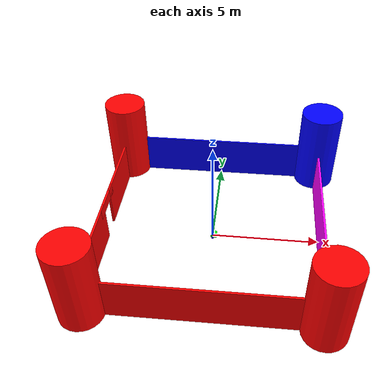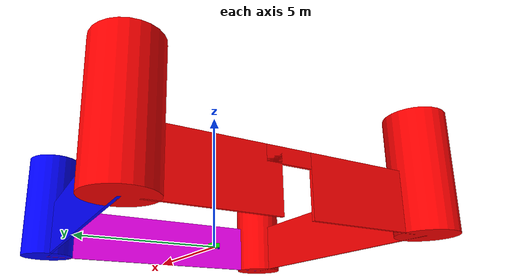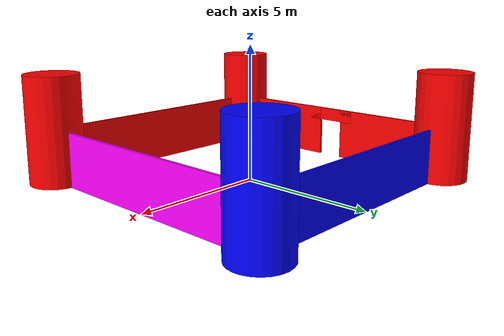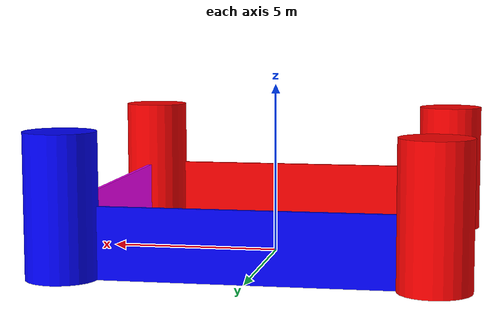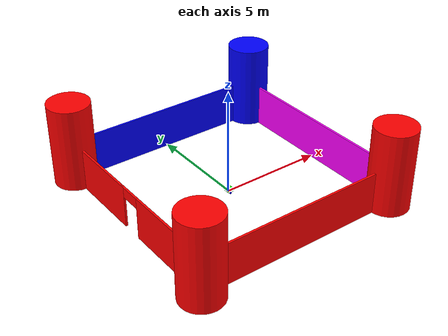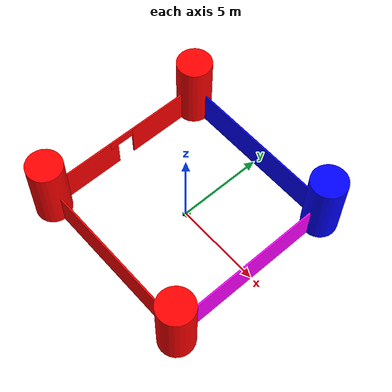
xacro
<?xml version="1.0"?>
<robot xmlns:xacro="http://www.ros.org/wiki/xacro"  name="robot">
    <xacro:property name="chassis_offset" value="-0.1" />
    <xacro:property name="chassis_width" value="0.3" />
    <xacro:property name="chassis_height" value="0.15" />
    <xacro:property name="chassis_length" value="0.3" />

    <xacro:property name="wheel_offset" value="0.175" />
    <xacro:property name="wheel_radius" value="0.05" />
    <xacro:property name="wheel_thickness" value="0.04" />

    <xacro:property name="caster_offset" value="0.24" />
    <xacro:property name="caster_radius" value="0.05" />

    <xacro:property name="lidar_radius" value="0.05" />
    <xacro:property name="lidar_height" value="0.04" />

    <xacro:property name="wall_length" value="10" />
    <xacro:property name="wall_thickness" value="0.1" />
    <xacro:property name="wall_height" value="2" />

    <xacro:property name="tower_height" value="4" />
    <xacro:property name="tower_radius" value="1" />

    <xacro:property name="door_width" value="1" />
    <xacro:property name="door_height" value="1.5" />
    <xacro:property name="door_thickness" value="0.1" />

    <xacro:include filename="colours.xacro" />
    <xacro:include filename="inertial.xacro" />
    <xacro:include filename="gazebo.xacro" />
    <xacro:include filename="robot_core.xacro" />

</robot>

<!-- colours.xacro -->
<robot xmlns:xacro="http://www.ros.org/wiki/xacro">
    <material name="black">
        <color rgba="0 0 0 1"/>
    </material>

    <material name="white">
        <color rgba="1 1 1 1"/>
    </material>

    <material name="red">
        <color rgba="1 0 0 1"/>
    </material>

    <material name="green">
        <color rgba="0 1 0 1"/>
    </material>

    <material name="blue">
        <color rgba="0 0 1 1"/>
    </material>

    <material name="yellow">
        <color rgba="1 1 0 1"/>
    </material>

    <material name="magenta">
        <color rgba="1 0 1 1"/>
    </material>

    <material name="cyan">
        <color rgba="0 1 1 1"/>
    </material>
</robot>

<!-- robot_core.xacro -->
<robot xmlns:xacro="http://www.ros.org/wiki/xacro">

    <link name="base_link">
    </link>

    <joint name="north_wall_joint" type="fixed">
        <parent link="base_link"/>
        <child link="north_wall"/>
        <origin xyz="0 ${wall_length/2} ${wall_height/2}"/>
    </joint>

    <link name="north_wall">
        <visual>
            <origin xyz="0 0 0" rpy="0 0 0"/>
            <geometry>
                <box size="${wall_length} ${wall_thickness} ${wall_height}"/>
            </geometry>
            <material name="blue"/>
        </visual>
        <collision>
            <origin xyz="0 0 0" rpy="0 0 0"/>
            <geometry>
                <box size="${wall_length} ${wall_thickness} ${wall_height}"/>
            </geometry>
        </collision>
        <xacro:inertial_box mass="0.5" x="${wall_length}" y="${wall_thickness}" z="${wall_height}">
            <origin xyz="0 0 0" rpy="0 0 0"/>
        </xacro:inertial_box>
    </link>

    <joint name="south_wall_joint" type="fixed">
        <parent link="base_link"/>
        <child link="south_wall"/>
        <origin xyz="0 -${wall_length/2} ${wall_height/2}"/>
    </joint>
    <link name="south_wall">
        <visual>
            <origin xyz="0 0 0" rpy="0 0 0"/>
            <geometry>
                <box size="${wall_length} ${wall_thickness} ${wall_height}"/>
            </geometry>
            <material name="red"/>
        </visual>
        <collision>
            <origin xyz="0 0 0" rpy="0 0 0"/>
            <geometry>
                <box size="${wall_length} ${wall_thickness} ${wall_height}"/>
            </geometry>
        </collision>
        <xacro:inertial_box mass="0.5" x="${wall_length}" y="${wall_thickness}" z="${wall_height}">
            <origin xyz="0 0 0" rpy="0 0 0"/>
        </xacro:inertial_box>
    </link>

    <joint name="east_wall_joint" type="fixed">
        <parent link="base_link"/>
        <child link="east_wall"/>
        <origin xyz="${wall_length/2} 0 ${wall_height/2}"/>
    </joint>
    <link name="east_wall">
        <visual>
            <origin xyz="0 0 0" rpy="0 0 ${pi/2}"/>
            <geometry>
                <box size="${wall_length} ${wall_thickness} ${wall_height}"/>
            </geometry>
            <material name="magenta"/>
        </visual>
        <collision>
            <origin xyz="0 0 0" rpy="0 0 ${pi/2}"/>
            <geometry>
                <box size="${wall_length} ${wall_thickness} ${wall_height}"/>
            </geometry>
        </collision>
        <xacro:inertial_box mass="0.5" x="${wall_length}" y="${wall_thickness}" z="${wall_height}">
            <origin xyz="0 0 0" rpy="0 0 ${pi/2}"/>
        </xacro:inertial_box>
    </link>

    <joint name="west_wall_joint_n" type="fixed">
        <parent link="base_link"/>
        <child link="west_wall_n"/>
        <origin xyz="-${wall_length/2} ${wall_length/4} ${wall_height/2}" rpy="0 0 ${pi/2}"/>
    </joint>
    <link name="west_wall_n">
        <visual>
            <origin xyz="0 0 0"/>
            <geometry>
                <box size="${wall_length/2-door_width} ${wall_thickness} ${wall_height}"/>
            </geometry>
            <material name="red"/>
        </visual>
        <collision>
            <origin xyz="0 0 0"/>
            <geometry>
                <box size="${wall_length/2-door_width} ${wall_thickness} ${wall_height}"/>
            </geometry>
         </collision>
        <xacro:inertial_box mass="0.5" x="${wall_length/2}" y="${wall_thickness}" z="${wall_height}">
            <origin xyz="0 0 0"/>
        </xacro:inertial_box>
    </link>

    <joint name="west_wall_joint_s" type="fixed">
        <parent link="base_link"/>
        <child link="west_wall_s"/>
        <origin xyz="-${wall_length/2} -${wall_length/4} ${wall_height/2}" rpy="0 0 ${pi/2}"/>
    </joint>
    <link name="west_wall_s">
        <visual>
            <origin xyz="0 0 0"/>
            <geometry>
                <box size="${wall_length/2-door_width} ${wall_thickness} ${wall_height}"/>
            </geometry>
            <material name="red"/>
        </visual>
        <collision>
            <origin xyz="0 0 0"/>
            <geometry>
                <box size="${wall_length/2-door_width} ${wall_thickness} ${wall_height}"/>
            </geometry>
        </collision>
        <xacro:inertial_box mass="0.5" x="${wall_length/2}" y="${wall_thickness}" z="${wall_height}">
            <origin xyz="0 0 0"/>
        </xacro:inertial_box>
    </link>

    <joint name="west_wall_joint_u" type="fixed">
        <parent link="base_link"/>
        <child link="west_wall_u"/>
        <origin xyz="-${wall_length/2} 0 ${door_height + (wall_height-door_height)/2}" rpy="0 0 ${pi/2}"/>
    </joint>
    <link name="west_wall_u">
        <visual>
            <origin xyz="0 0 0"/>
            <geometry>
                <box size="${door_width*2} ${wall_thickness} ${wall_height-door_height}"/>
            </geometry>
            <material name="red"/>
        </visual>
        <collision>
            <origin xyz="0 0 0"/>
            <geometry>
                <box size="${door_width*2} ${wall_thickness} ${wall_height-door_height}"/>
            </geometry>
        </collision>
        <xacro:inertial_box mass="0.5" x="${door_width*2}" y="${wall_thickness}" z="${wall_height-door_height}">
            <origin xyz="0 0 0"/>
        </xacro:inertial_box>
    </link>

    <joint name="ne_tower_joint" type="fixed">
        <parent link="base_link"/>
        <child link="ne_tower"/>
        <origin xyz="${wall_length/2} ${wall_length/2} ${tower_height/2}"/>
    </joint>
    <link name="ne_tower">
        <visual>
            <origin xyz="0 0 0" rpy="0 0 ${pi/2}"/>
            <geometry>
                <cylinder length="${tower_height}" radius="${tower_radius}" />
            </geometry>
            <material name="blue"/>
        </visual>
        <collision>
            <origin xyz="0 0 0" rpy="0 0 ${pi/2}"/>
            <geometry>
                <cylinder length="${tower_height}" radius="${tower_radius}" />
            </geometry>
        </collision>
        <xacro:inertial_cylinder mass="0.1" length="${tower_height}" radius="${tower_radius}">
            <origin xyz="0 0 0" rpy="0 0 0"/>
        </xacro:inertial_cylinder>
    </link>

    <joint name="se_tower_joint" type="fixed">
        <parent link="base_link"/>
        <child link="se_tower"/>
        <origin xyz="${wall_length/2} -${wall_length/2} ${tower_height/2}"/>
    </joint>
    <link name="se_tower">
        <visual>
            <origin xyz="0 0 0" rpy="0 0 ${pi/2}"/>
            <geometry>
                <cylinder length="${tower_height}" radius="${tower_radius}" />
            </geometry>
            <material name="red"/>
        </visual>
        <collision>
            <origin xyz="0 0 0" rpy="0 0 ${pi/2}"/>
            <geometry>
                <cylinder length="${tower_height}" radius="${tower_radius}" />
            </geometry>
        </collision>
        <xacro:inertial_cylinder mass="0.1" length="${tower_height}" radius="${tower_radius}">
            <origin xyz="0 0 0" rpy="0 0 0"/>
        </xacro:inertial_cylinder>
    </link>

    <joint name="sw_tower_joint" type="fixed">
        <parent link="base_link"/>
        <child link="sw_tower"/>
        <origin xyz="-${wall_length/2} -${wall_length/2} ${tower_height/2}"/>
    </joint>
    <link name="sw_tower">
        <visual>
            <origin xyz="0 0 0" rpy="0 0 ${pi/2}"/>
            <geometry>
                <cylinder length="${tower_height}" radius="${tower_radius}" />
            </geometry>
            <material name="red"/>
        </visual>
        <collision>
            <origin xyz="0 0 0" rpy="0 0 ${pi/2}"/>
            <geometry>
                <cylinder length="${tower_height}" radius="${tower_radius}" />
            </geometry>
        </collision>
        <xacro:inertial_cylinder mass="0.1" length="${tower_height}" radius="${tower_radius}">
            <origin xyz="0 0 0" rpy="0 0 0"/>
        </xacro:inertial_cylinder>
    </link>

    <joint name="nw_tower_joint" type="fixed">
        <parent link="base_link"/>
        <child link="nw_tower"/>
        <origin xyz="-${wall_length/2} ${wall_length/2} ${tower_height/2}"/>
    </joint>
    <link name="nw_tower">
        <visual>
            <origin xyz="0 0 0" rpy="0 0 ${pi/2}"/>
            <geometry>
                <cylinder length="${tower_height}" radius="${tower_radius}" />
            </geometry>
            <material name="red"/>
        </visual>
        <collision>
            <origin xyz="0 0 0" rpy="0 0 ${pi/2}"/>
            <geometry>
                <cylinder length="${tower_height}" radius="${tower_radius}" />
            </geometry>
        </collision>
        <xacro:inertial_cylinder mass="0.1" length="${tower_height}" radius="${tower_radius}">
            <origin xyz="0 0 0" rpy="0 0 0"/>
        </xacro:inertial_cylinder>
    </link>

    <joint name="chassis_joint" type="fixed">
        <parent link="base_link"/>
        <child link="chassis"/>
        <origin xyz="${chassis_offset} 0 0"/>
    </joint>

    <link name="chassis">
        <visual>
            <origin xyz="${chassis_length/2} 0 ${chassis_height/2}" rpy="0 0 0"/>
            <geometry>
                <box size="${chassis_length} ${chassis_width} ${chassis_height}"/>
            </geometry>
            <material name="green"/>
        </visual>
        <collision>
            <origin xyz="${chassis_length/2} 0 ${chassis_height/2}" rpy="0 0 0"/>
            <geometry>
                <box size="${chassis_length} ${chassis_width} ${chassis_height}"/>
            </geometry>
        </collision>
        <xacro:inertial_box mass="0.5" x="${chassis_length}" y="${chassis_width}" z="${chassis_height}">
            <origin xyz="${chassis_length/2} 0 ${chassis_height/2}" rpy="0 0 0"/>
        </xacro:inertial_box>
    </link>

    <!-- LEFT WHEEL -->
    <joint name="left_wheel_joint" type="continuous">
        <parent link="base_link"/>
        <child link="left_wheel"/>
        <origin xyz="0 ${wheel_offset} 0" rpy="-${pi/2} 0 0"/>
        <axis xyz="0 0 1"/>
    </joint>

    <link name="left_wheel">
        <visual>
            <geometry>
                <cylinder length="${wheel_thickness}" radius="${wheel_radius}" />
            </geometry>
            <material name="blue"/>
        </visual>
        <collision>
            <geometry>
                <cylinder length="${wheel_thickness}" radius="${wheel_radius}" />
            </geometry>
        </collision>
        <xacro:inertial_cylinder mass="0.1" length="${wheel_thickness}" radius="${wheel_radius}">
            <origin xyz="0 0 0" rpy="0 0 0"/>
        </xacro:inertial_cylinder>
    </link>

    <!-- RIGHT WHEEL -->
    <joint name="right_wheel_joint" type="continuous">
        <parent link="base_link"/>
        <child link="right_wheel"/>
        <origin xyz="0 -${wheel_offset} 0" rpy="${pi/2} 0 0"/>
        <axis xyz="0 0 -1"/>
    </joint>

    <link name="right_wheel">
        <visual>
            <geometry>
                <cylinder length="${wheel_thickness}" radius="${wheel_radius}" />
            </geometry>
            <material name="blue"/>
        </visual>
        <collision>
            <geometry>
                <cylinder length="${wheel_thickness}" radius="${wheel_radius}" />
            </geometry>
        </collision>
        <xacro:inertial_cylinder mass="0.1" length="${wheel_thickness}" radius="${wheel_radius}">
            <origin xyz="0 0 0" rpy="0 0 0"/>
        </xacro:inertial_cylinder>
    </link>

    <!-- CASTER WHEEL -->
    <joint name="caster_wheel_joint" type="fixed">
        <parent link="chassis"/>
        <child link="caster_wheel"/>
        <origin xyz="${caster_offset} 0 0" rpy="0 0 0"/>
    </joint>

    <link name="caster_wheel">
        <visual>
            <geometry>
                <sphere radius="${caster_radius}" />
            </geometry>
            <material name="blue"/>
        </visual>
        <collision>
            <geometry>
                <sphere radius="${caster_radius}" />
            </geometry>
        </collision>
        <xacro:inertial_sphere mass="1.0" radius="${caster_radius}">
            <origin xyz="0 0 0" rpy="0 0 0"/>
        </xacro:inertial_sphere>
    </link>
</robot>
